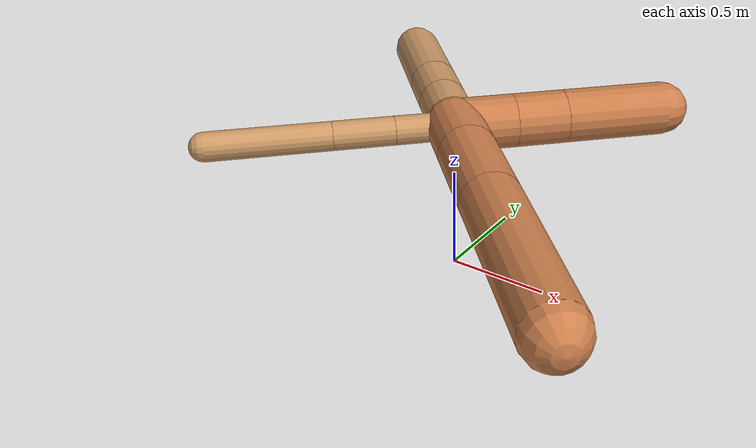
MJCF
<?xml version="1.0" ?>
<mujoco model="ant">

	<compiler angle="degree" coordinate="local" inertiafromgeom="true"/>

	<option integrator="RK4" timestep="0.01"/>

	<custom>

		<numeric data="0.0 0.0 0.55 1.0 0.0 0.0 0.0 0.0 1.0 0.0 -1.0 0.0 -1.0 0.0 1.0" name="init_qpos"/>

	</custom>

	<default>

		<joint armature="1" damping="1" limited="true"/>

		<geom conaffinity="0" condim="3" density="5.0" friction="1.5 0.1 0.1" margin="0.01" rgba="0.8 0.6 0.4 1"/>

	</default>

	<worldbody>

		<body name="torso" pos="0 0 0.75">

			<geom name="torso_geom" pos="0 0 0" size="0.09677509916433175" type="sphere"/>

			<!--joint armature="0" damping="0" limited="false" margin="0.01" name="root" pos="0 0 0" type="free"/-->

			<body name="front_left_leg" pos="0 0 0">

				<geom fromto="0 0 0 0.2 0.2 0" name="aux_1_geom" size="0.12628974067752657" type="capsule" rgba=".8 .5 .3 1"/>

				<body name="aux_1" pos="0.2 0.2 0">

					<joint axis="0 0 1" name="hip_1" pos="0.0 0.0 0.0" range="-40 40" type="hinge"/>

					<geom fromto="0 0 0 0.1728555722045584 0.1728555722045584 0" name="left_leg_geom" size="0.12628974067752657" type="capsule" rgba=".8 .5 .3 1"/>

					<body pos="0.1728555722045584 0.1728555722045584 0" name="front_left_foot">

						<joint axis="-1 1 0" name="ankle_1" pos="0.0 0.0 0.0" range="30 100" type="hinge"/>

						<geom fromto="0 0 0 0.3457111444091168 0.3457111444091168 0" name="left_ankle_geom" size="0.12628974067752657" type="capsule" rgba=".8 .5 .3 1"/>

					</body>

				</body>

			</body>

			<body name="front_right_leg" pos="0 0 0">

				<geom fromto="0 0 0 -0.2 0.2 0" name="aux_2_geom" size="0.11693339431873188" type="capsule"/>

				<body name="aux_2" pos="-0.2 0.2 0">

					<joint axis="0 0 1" name="hip_2" pos="0.0 0.0 0.0" range="-40 40" type="hinge"/>

					<geom fromto="0 0 0 -0.1740562502855897 0.1740562502855897 0" name="right_leg_geom" size="0.11693339431873188" type="capsule"/>

					<body pos="-0.1740562502855897 0.1740562502855897 0" name="front_right_foot">

						<joint axis="1 1 0" name="ankle_2" pos="0.0 0.0 0.0" range="-100 -30" type="hinge"/>

						<geom fromto="0 0 0 -0.3481125005711794 0.3481125005711794 0" name="right_ankle_geom" size="0.11693339431873188" type="capsule"/>

					</body>

				</body>

			</body>

			<body name="left_back_leg" pos="0 0 0">

				<geom fromto="0 0 0 -0.2 -0.2 0" name="aux_3_geom" size="0.06843163407359847" type="capsule"/>

				<body name="aux_3" pos="-0.2 -0.2 0">

					<joint axis="0 0 1" name="hip_3" pos="0.0 0.0 0.0" range="-40 40" type="hinge"/>

					<geom fromto="0 0 0 -0.20289550918689106 -0.20289550918689106 0" name="back_leg_geom" size="0.06843163407359847" type="capsule"/>

					<body pos="-0.20289550918689106 -0.20289550918689106 0" name="left_back_foot">

						<joint axis="-1 1 0" name="ankle_3" pos="0.0 0.0 0.0" range="-100 -30" type="hinge"/>

						<geom fromto="0 0 0 -0.4057910183737821 -0.4057910183737821 0" name="third_ankle_geom" size="0.06843163407359847" type="capsule"/>

					</body>

				</body>

			</body>

			<body name="right_back_leg" pos="0 0 0">

				<geom fromto="0 0 0 0.2 -0.2 0" name="aux_4_geom" size="0.13552817297485853" type="capsule" rgba=".8 .5 .3 1"/>

				<body name="aux_4" pos="0.2 -0.2 0">

					<joint axis="0 0 1" name="hip_4" pos="0.0 0.0 0.0" range="-40 40" type="hinge"/>

					<geom fromto="0 0 0 0.31332812187870157 -0.31332812187870157 0" name="rightback_leg_geom" size="0.13552817297485853" type="capsule" rgba=".8 .5 .3 1"/>

					<body pos="0.31332812187870157 -0.31332812187870157 0" name="right_back_foot">

						<joint axis="1 1 0" name="ankle_4" pos="0.0 0.0 0.0" range="30 100" type="hinge"/>

						<geom fromto="0 0 0 0.6266562437574031 -0.6266562437574031 0" name="fourth_ankle_geom" size="0.13552817297485853" type="capsule" rgba=".8 .5 .3 1"/>

					</body>

				</body>

			</body>

		</body>

	</worldbody>

	<actuator>

		<motor ctrllimited="true" ctrlrange="-1.0 1.0" joint="hip_4" gear="150"/>

		<motor ctrllimited="true" ctrlrange="-1.0 1.0" joint="ankle_4" gear="150"/>

		<motor ctrllimited="true" ctrlrange="-1.0 1.0" joint="hip_1" gear="150"/>

		<motor ctrllimited="true" ctrlrange="-1.0 1.0" joint="ankle_1" gear="150"/>

		<motor ctrllimited="true" ctrlrange="-1.0 1.0" joint="hip_2" gear="150"/>

		<motor ctrllimited="true" ctrlrange="-1.0 1.0" joint="ankle_2" gear="150"/>

		<motor ctrllimited="true" ctrlrange="-1.0 1.0" joint="hip_3" gear="150"/>

		<motor ctrllimited="true" ctrlrange="-1.0 1.0" joint="ankle_3" gear="150"/>

	</actuator>

</mujoco>
